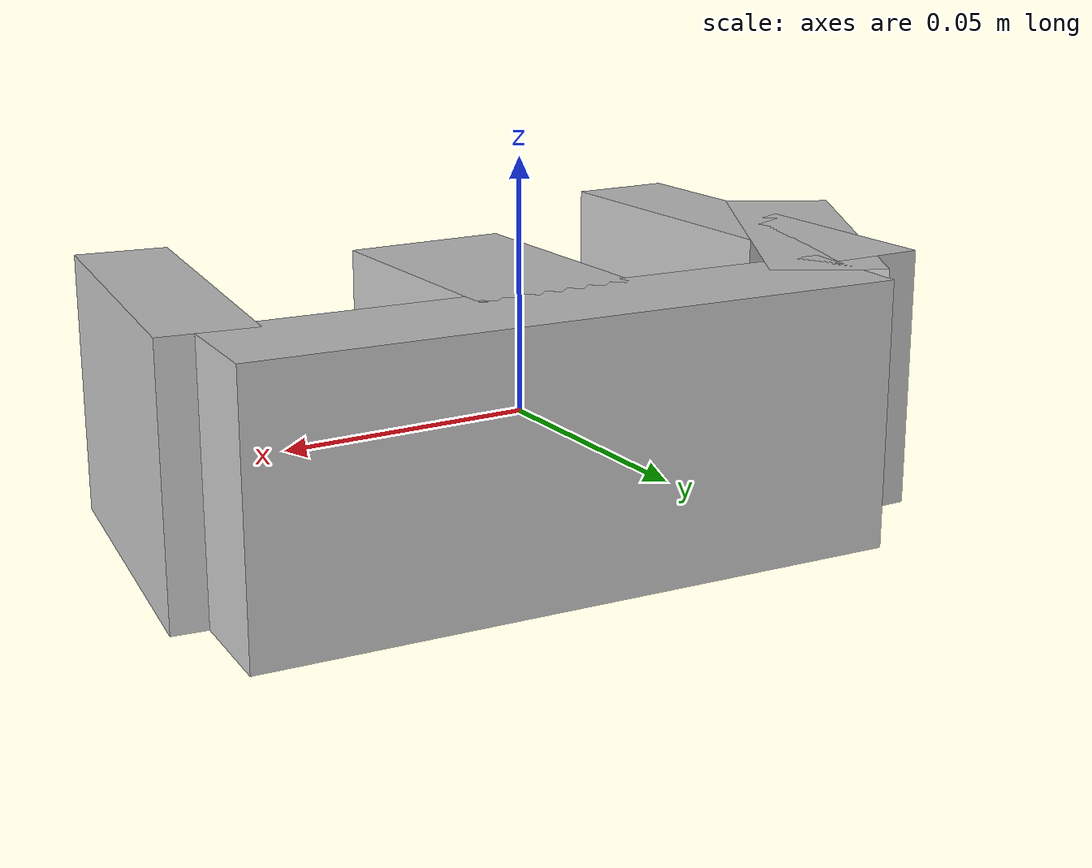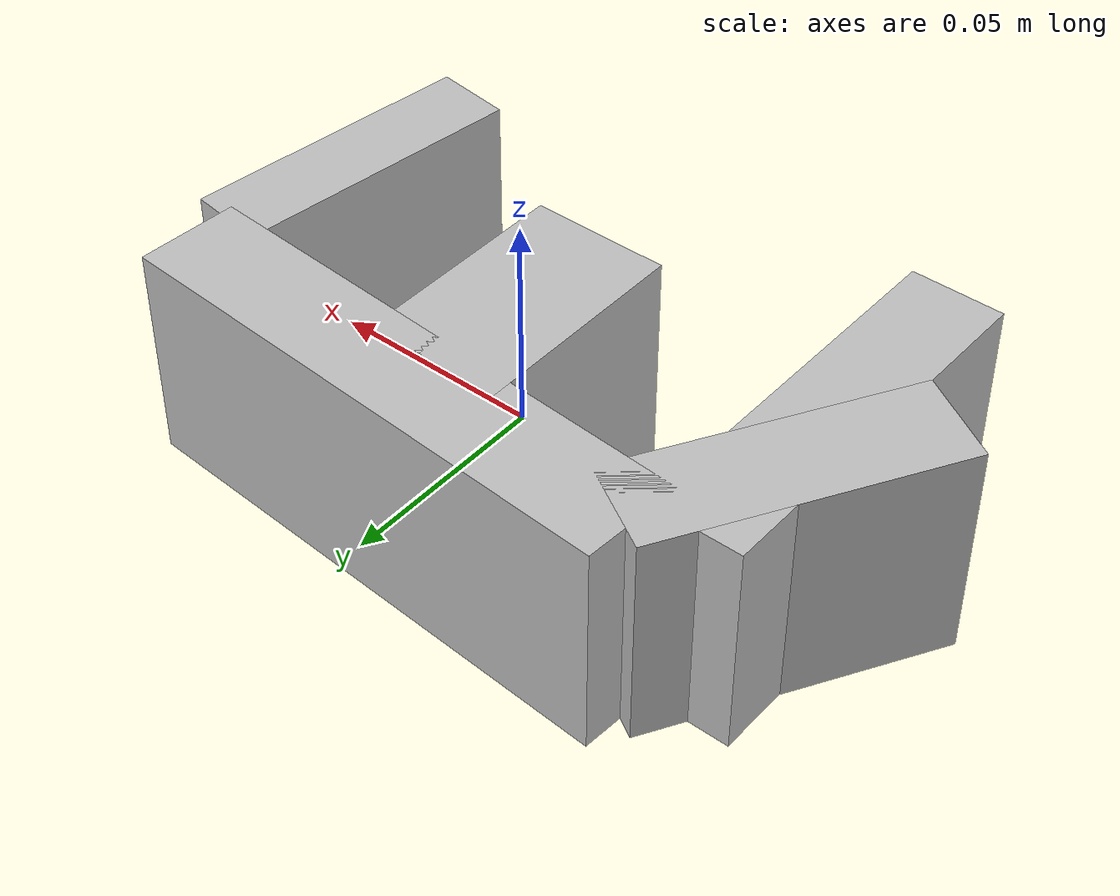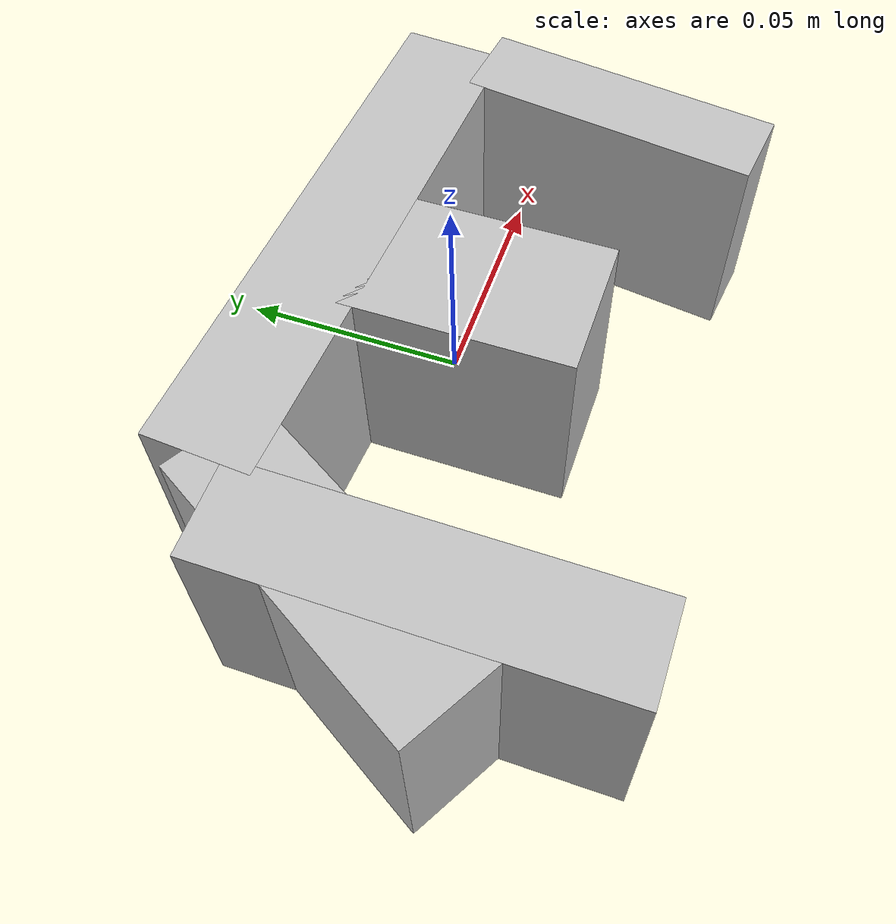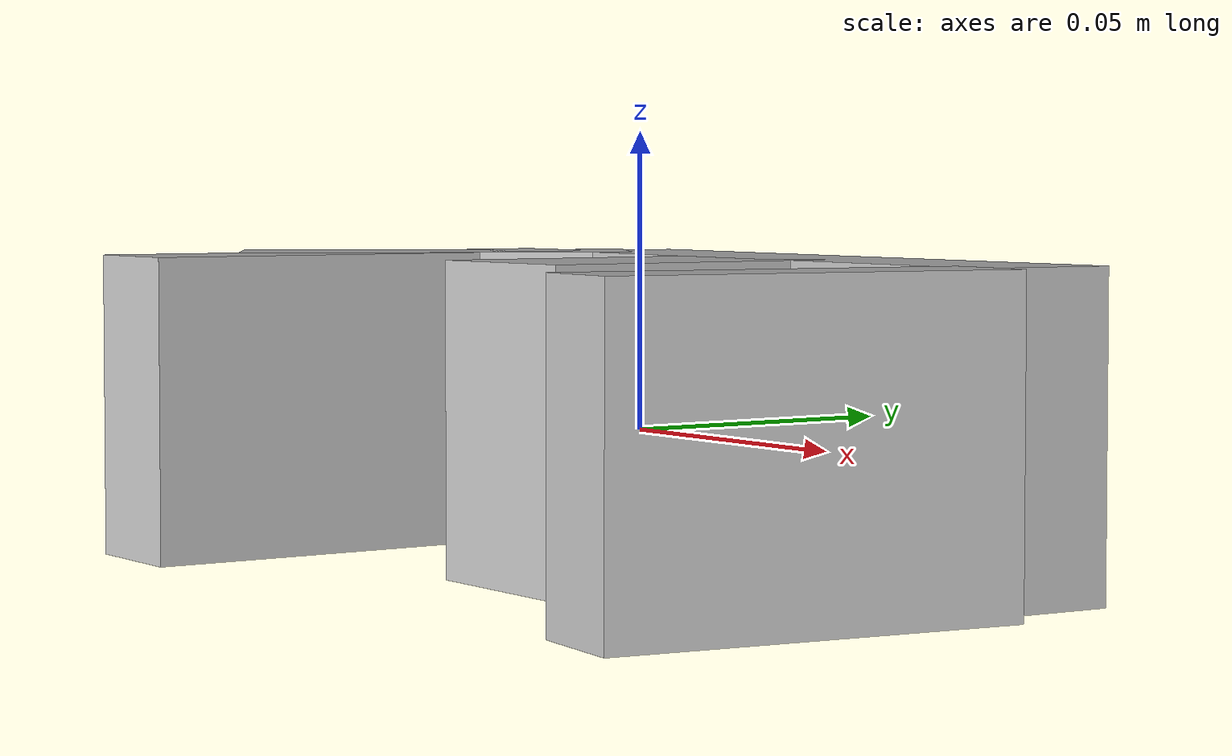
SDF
<?xml version="1.0"?>
<sdf version="1.7">
  <model name="3_shape_video">
    <link name="3_shape_video">
      <inertial>
        <pose>-0.012281 0.002562 0.002073 0 0 0</pose>
        <mass>0.05</mass>
        <inertia>
          <ixx>4.62415958e-05</ixx>
          <iyy>0.000146444351</iyy>
          <izz>0.000168650483</izz>
          <ixy>-7.02008799e-06</ixy>
          <ixz>1.27295816e-06</ixz>
          <iyz>-2.65557514e-07</iyz>
        </inertia>
      </inertial>
      <visual name="box_0">
        <pose>0.008670 0.028770 0.002073 0 0 -0.064900</pose>
        <geometry>
          <box><size>0.128000 0.024500 0.053223</size></box>
        </geometry>
        <material>
          <diffuse>0.75 0.75 0.75 1</diffuse>
        </material>
      </visual>
      <collision name="box_0_volume">
        <pose>0.008670 0.028770 0.002073 0 0 -0.064900</pose>
        <geometry>
          <box><size>0.128000 0.024500 0.053223</size></box>
        </geometry>
        <drake:proximity_properties>
          <drake:compliant_hydroelastic/>
          <drake:hydroelastic_modulus> 3.0e7 </drake:hydroelastic_modulus>
          <drake:mesh_resolution_hint> 0.02 </drake:mesh_resolution_hint>
          <drake:hunt_crossley_dissipation>10</drake:hunt_crossley_dissipation>
          <drake:mu_dynamic>0.3</drake:mu_dynamic>
        </drake:proximity_properties>
      </collision>
      <visual name="box_1">
        <pose>-0.064870 -0.017750 0.002073 0 0 -1.570800</pose>
        <geometry>
          <box><size>0.090000 0.022000 0.053223</size></box>
        </geometry>
        <material>
          <diffuse>0.75 0.75 0.75 1</diffuse>
        </material>
      </visual>
      <collision name="box_1_volume">
        <pose>-0.064870 -0.017750 0.002073 0 0 -1.570800</pose>
        <geometry>
          <box><size>0.090000 0.022000 0.053223</size></box>
        </geometry>
        <drake:proximity_properties>
          <drake:compliant_hydroelastic/>
          <drake:hydroelastic_modulus> 3.0e7 </drake:hydroelastic_modulus>
          <drake:mesh_resolution_hint> 0.02 </drake:mesh_resolution_hint>
          <drake:hunt_crossley_dissipation>10</drake:hunt_crossley_dissipation>
          <drake:mu_dynamic>0.3</drake:mu_dynamic>
        </drake:proximity_properties>
      </collision>
      <visual name="box_2">
        <pose>0.004130 -0.003750 0.002073 0 0 -1.570800</pose>
        <geometry>
          <box><size>0.054000 0.033000 0.053223</size></box>
        </geometry>
        <material>
          <diffuse>0.75 0.75 0.75 1</diffuse>
        </material>
      </visual>
      <collision name="box_2_volume">
        <pose>0.004130 -0.003750 0.002073 0 0 -1.570800</pose>
        <geometry>
          <box><size>0.054000 0.033000 0.053223</size></box>
        </geometry>
        <drake:proximity_properties>
          <drake:compliant_hydroelastic/>
          <drake:hydroelastic_modulus> 3.0e7 </drake:hydroelastic_modulus>
          <drake:mesh_resolution_hint> 0.02 </drake:mesh_resolution_hint>
          <drake:hunt_crossley_dissipation>10</drake:hunt_crossley_dissipation>
          <drake:mu_dynamic>0.3</drake:mu_dynamic>
        </drake:proximity_properties>
      </collision>
      <visual name="box_3">
        <pose>0.065120 -0.019010 0.002073 0 0 1.439900</pose>
        <geometry>
          <box><size>0.070500 0.018500 0.053223</size></box>
        </geometry>
        <material>
          <diffuse>0.75 0.75 0.75 1</diffuse>
        </material>
      </visual>
      <collision name="box_3_volume">
        <pose>0.065120 -0.019010 0.002073 0 0 1.439900</pose>
        <geometry>
          <box><size>0.070500 0.018500 0.053223</size></box>
        </geometry>
        <drake:proximity_properties>
          <drake:compliant_hydroelastic/>
          <drake:hydroelastic_modulus> 3.0e7 </drake:hydroelastic_modulus>
          <drake:mesh_resolution_hint> 0.02 </drake:mesh_resolution_hint>
          <drake:hunt_crossley_dissipation>10</drake:hunt_crossley_dissipation>
          <drake:mu_dynamic>0.3</drake:mu_dynamic>
        </drake:proximity_properties>
      </collision>
      <visual name="box_4">
        <pose>-0.067700 0.001000 0.002073 0 0 1.047200</pose>
        <geometry>
          <box><size>0.072000 0.023000 0.053223</size></box>
        </geometry>
        <material>
          <diffuse>0.75 0.75 0.75 1</diffuse>
        </material>
      </visual>
      <collision name="box_4_volume">
        <pose>-0.067700 0.001000 0.002073 0 0 1.047200</pose>
        <geometry>
          <box><size>0.072000 0.023000 0.053223</size></box>
        </geometry>
        <drake:proximity_properties>
          <drake:compliant_hydroelastic/>
          <drake:hydroelastic_modulus> 3.0e7 </drake:hydroelastic_modulus>
          <drake:mesh_resolution_hint> 0.02 </drake:mesh_resolution_hint>
          <drake:hunt_crossley_dissipation>10</drake:hunt_crossley_dissipation>
          <drake:mu_dynamic>0.3</drake:mu_dynamic>
        </drake:proximity_properties>
      </collision>
    </link>
  </model>
</sdf>
